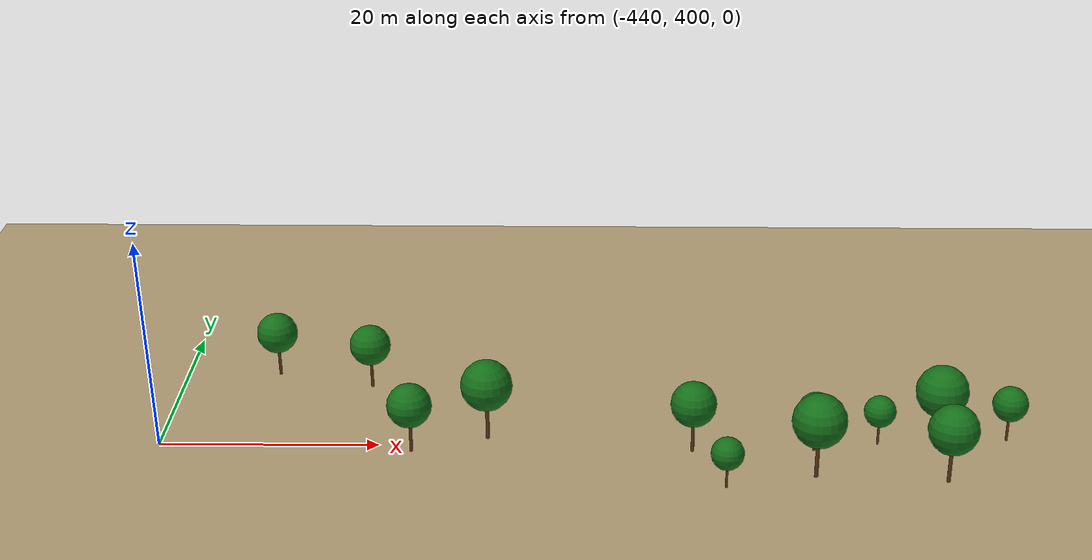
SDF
<sdf version="1.9">
 <world name="crossroad_world">
  <model name="ground_plane">
   <static>true</static>
   <pose>0 0 -0.05 0 0 0</pose>
   <link name="link">
    <collision name="collision">
     <geometry><plane><normal>0 0 1</normal><size>10000 10000</size></plane></geometry>
    </collision>
    <visual name="visual">
     <geometry><plane><normal>0 0 1</normal><size>15000 15000</size></plane></geometry>
     <material><ambient>0.68 0.60 0.45 1</ambient><diffuse>0.68 0.60 0.45 1</diffuse></material>
    </visual>
   </link>
  </model>
  <model name="tree_367">
   <static>true</static>
   <pose>-374.736 400.791 0 0 0 0</pose>
   <link name="link">
    <visual name="trunk">
     <pose>0 0 1.229 0 0 0</pose>
     <geometry><cylinder><radius>0.108</radius><length>2.457</length></cylinder></geometry>
     <material><ambient>0.38 0.22 0.08 1</ambient><diffuse>0.38 0.22 0.08 1</diffuse></material>
    </visual>
    <visual name="canopy">
     <pose>0 0 3.406 0 0 0</pose>
     <geometry><sphere><radius>1.459</radius></sphere></geometry>
     <material><ambient>0.08 0.44 0.10 1</ambient><diffuse>0.08 0.44 0.10 1</diffuse></material>
    </visual>
    <collision name="col">
     <pose>0 0 1.229 0 0 0</pose>
     <geometry><cylinder><radius>0.108</radius><length>2.457</length></cylinder></geometry>
    </collision>
   </link>
  </model>
  <model name="tree_368">
   <static>true</static>
   <pose>-380.603 399.627 0 0 0 0</pose>
   <link name="link">
    <visual name="trunk">
     <pose>0 0 1.466 0 0 0</pose>
     <geometry><cylinder><radius>0.128</radius><length>2.933</length></cylinder></geometry>
     <material><ambient>0.38 0.22 0.08 1</ambient><diffuse>0.38 0.22 0.08 1</diffuse></material>
    </visual>
    <visual name="canopy">
     <pose>0 0 4.065 0 0 0</pose>
     <geometry><sphere><radius>1.741</radius></sphere></geometry>
     <material><ambient>0.08 0.44 0.10 1</ambient><diffuse>0.08 0.44 0.10 1</diffuse></material>
    </visual>
    <collision name="col">
     <pose>0 0 1.466 0 0 0</pose>
     <geometry><cylinder><radius>0.128</radius><length>2.933</length></cylinder></geometry>
    </collision>
   </link>
  </model>
  <model name="tree_369">
   <static>true</static>
   <pose>-388.865 393.311 0 0 0 0</pose>
   <link name="link">
    <visual name="trunk">
     <pose>0 0 1.246 0 0 0</pose>
     <geometry><cylinder><radius>0.109</radius><length>2.493</length></cylinder></geometry>
     <material><ambient>0.38 0.22 0.08 1</ambient><diffuse>0.38 0.22 0.08 1</diffuse></material>
    </visual>
    <visual name="canopy">
     <pose>0 0 3.455 0 0 0</pose>
     <geometry><sphere><radius>1.480</radius></sphere></geometry>
     <material><ambient>0.08 0.44 0.10 1</ambient><diffuse>0.08 0.44 0.10 1</diffuse></material>
    </visual>
    <collision name="col">
     <pose>0 0 1.246 0 0 0</pose>
     <geometry><cylinder><radius>0.109</radius><length>2.493</length></cylinder></geometry>
    </collision>
   </link>
  </model>
  <model name="tree_372">
   <static>true</static>
   <pose>-369.341 400.679 0 0 0 0</pose>
   <link name="link">
    <visual name="trunk">
     <pose>0 0 2.012 0 0 0</pose>
     <geometry><cylinder><radius>0.176</radius><length>4.024</length></cylinder></geometry>
     <material><ambient>0.38 0.22 0.08 1</ambient><diffuse>0.38 0.22 0.08 1</diffuse></material>
    </visual>
    <visual name="canopy">
     <pose>0 0 5.577 0 0 0</pose>
     <geometry><sphere><radius>2.389</radius></sphere></geometry>
     <material><ambient>0.08 0.44 0.10 1</ambient><diffuse>0.08 0.44 0.10 1</diffuse></material>
    </visual>
    <collision name="col">
     <pose>0 0 2.012 0 0 0</pose>
     <geometry><cylinder><radius>0.176</radius><length>4.024</length></cylinder></geometry>
    </collision>
   </link>
  </model>
  <model name="tree_374">
   <static>true</static>
   <pose>-416.975 399.081 0 0 0 0</pose>
   <link name="link">
    <visual name="trunk">
     <pose>0 0 1.704 0 0 0</pose>
     <geometry><cylinder><radius>0.149</radius><length>3.407</length></cylinder></geometry>
     <material><ambient>0.38 0.22 0.08 1</ambient><diffuse>0.38 0.22 0.08 1</diffuse></material>
    </visual>
    <visual name="canopy">
     <pose>0 0 4.722 0 0 0</pose>
     <geometry><sphere><radius>2.023</radius></sphere></geometry>
     <material><ambient>0.08 0.44 0.10 1</ambient><diffuse>0.08 0.44 0.10 1</diffuse></material>
    </visual>
    <collision name="col">
     <pose>0 0 1.704 0 0 0</pose>
     <geometry><cylinder><radius>0.149</radius><length>3.407</length></cylinder></geometry>
    </collision>
   </link>
  </model>
  <model name="tree_376">
   <static>true</static>
   <pose>-380.852 395.173 0 0 0 0</pose>
   <link name="link">
    <visual name="trunk">
     <pose>0 0 2.051 0 0 0</pose>
     <geometry><cylinder><radius>0.179</radius><length>4.102</length></cylinder></geometry>
     <material><ambient>0.38 0.22 0.08 1</ambient><diffuse>0.38 0.22 0.08 1</diffuse></material>
    </visual>
    <visual name="canopy">
     <pose>0 0 5.685 0 0 0</pose>
     <geometry><sphere><radius>2.436</radius></sphere></geometry>
     <material><ambient>0.08 0.44 0.10 1</ambient><diffuse>0.08 0.44 0.10 1</diffuse></material>
    </visual>
    <collision name="col">
     <pose>0 0 2.051 0 0 0</pose>
     <geometry><cylinder><radius>0.179</radius><length>4.102</length></cylinder></geometry>
    </collision>
   </link>
  </model>
  <model name="tree_377">
   <static>true</static>
   <pose>-410.205 401.438 0 0 0 0</pose>
   <link name="link">
    <visual name="trunk">
     <pose>0 0 1.987 0 0 0</pose>
     <geometry><cylinder><radius>0.174</radius><length>3.974</length></cylinder></geometry>
     <material><ambient>0.38 0.22 0.08 1</ambient><diffuse>0.38 0.22 0.08 1</diffuse></material>
    </visual>
    <visual name="canopy">
     <pose>0 0 5.508 0 0 0</pose>
     <geometry><sphere><radius>2.359</radius></sphere></geometry>
     <material><ambient>0.08 0.44 0.10 1</ambient><diffuse>0.08 0.44 0.10 1</diffuse></material>
    </visual>
    <collision name="col">
     <pose>0 0 1.987 0 0 0</pose>
     <geometry><cylinder><radius>0.174</radius><length>3.974</length></cylinder></geometry>
    </collision>
   </link>
  </model>
  <model name="tree_379">
   <static>true</static>
   <pose>-391.602 399.386 0 0 0 0</pose>
   <link name="link">
    <visual name="trunk">
     <pose>0 0 1.752 0 0 0</pose>
     <geometry><cylinder><radius>0.153</radius><length>3.504</length></cylinder></geometry>
     <material><ambient>0.38 0.22 0.08 1</ambient><diffuse>0.38 0.22 0.08 1</diffuse></material>
    </visual>
    <visual name="canopy">
     <pose>0 0 4.856 0 0 0</pose>
     <geometry><sphere><radius>2.080</radius></sphere></geometry>
     <material><ambient>0.08 0.44 0.10 1</ambient><diffuse>0.08 0.44 0.10 1</diffuse></material>
    </visual>
    <collision name="col">
     <pose>0 0 1.752 0 0 0</pose>
     <geometry><cylinder><radius>0.153</radius><length>3.504</length></cylinder></geometry>
    </collision>
   </link>
  </model>
  <model name="tree_382">
   <static>true</static>
   <pose>-421.890 410.883 0 0 0 0</pose>
   <link name="link">
    <visual name="trunk">
     <pose>0 0 1.624 0 0 0</pose>
     <geometry><cylinder><radius>0.142</radius><length>3.248</length></cylinder></geometry>
     <material><ambient>0.38 0.22 0.08 1</ambient><diffuse>0.38 0.22 0.08 1</diffuse></material>
    </visual>
    <visual name="canopy">
     <pose>0 0 4.502 0 0 0</pose>
     <geometry><sphere><radius>1.929</radius></sphere></geometry>
     <material><ambient>0.08 0.44 0.10 1</ambient><diffuse>0.08 0.44 0.10 1</diffuse></material>
    </visual>
    <collision name="col">
     <pose>0 0 1.624 0 0 0</pose>
     <geometry><cylinder><radius>0.142</radius><length>3.248</length></cylinder></geometry>
    </collision>
   </link>
  </model>
  <model name="tree_384">
   <static>true</static>
   <pose>-362.900 401.601 0 0 0 0</pose>
   <link name="link">
    <visual name="trunk">
     <pose>0 0 1.368 0 0 0</pose>
     <geometry><cylinder><radius>0.120</radius><length>2.735</length></cylinder></geometry>
     <material><ambient>0.38 0.22 0.08 1</ambient><diffuse>0.38 0.22 0.08 1</diffuse></material>
    </visual>
    <visual name="canopy">
     <pose>0 0 3.791 0 0 0</pose>
     <geometry><sphere><radius>1.624</radius></sphere></geometry>
     <material><ambient>0.08 0.44 0.10 1</ambient><diffuse>0.08 0.44 0.10 1</diffuse></material>
    </visual>
    <collision name="col">
     <pose>0 0 1.368 0 0 0</pose>
     <geometry><cylinder><radius>0.120</radius><length>2.735</length></cylinder></geometry>
    </collision>
   </link>
  </model>
  <model name="tree_387">
   <static>true</static>
   <pose>-369.311 394.469 0 0 0 0</pose>
   <link name="link">
    <visual name="trunk">
     <pose>0 0 1.901 0 0 0</pose>
     <geometry><cylinder><radius>0.166</radius><length>3.802</length></cylinder></geometry>
     <material><ambient>0.38 0.22 0.08 1</ambient><diffuse>0.38 0.22 0.08 1</diffuse></material>
    </visual>
    <visual name="canopy">
     <pose>0 0 5.270 0 0 0</pose>
     <geometry><sphere><radius>2.258</radius></sphere></geometry>
     <material><ambient>0.08 0.44 0.10 1</ambient><diffuse>0.08 0.44 0.10 1</diffuse></material>
    </visual>
    <collision name="col">
     <pose>0 0 1.901 0 0 0</pose>
     <geometry><cylinder><radius>0.166</radius><length>3.802</length></cylinder></geometry>
    </collision>
   </link>
  </model>
  <model name="tree_390">
   <static>true</static>
   <pose>-431.120 413.249 0 0 0 0</pose>
   <link name="link">
    <visual name="trunk">
     <pose>0 0 1.627 0 0 0</pose>
     <geometry><cylinder><radius>0.142</radius><length>3.253</length></cylinder></geometry>
     <material><ambient>0.38 0.22 0.08 1</ambient><diffuse>0.38 0.22 0.08 1</diffuse></material>
    </visual>
    <visual name="canopy">
     <pose>0 0 4.509 0 0 0</pose>
     <geometry><sphere><radius>1.932</radius></sphere></geometry>
     <material><ambient>0.08 0.44 0.10 1</ambient><diffuse>0.08 0.44 0.10 1</diffuse></material>
    </visual>
    <collision name="col">
     <pose>0 0 1.627 0 0 0</pose>
     <geometry><cylinder><radius>0.142</radius><length>3.253</length></cylinder></geometry>
    </collision>
   </link>
  </model>
 </world>
</sdf>
